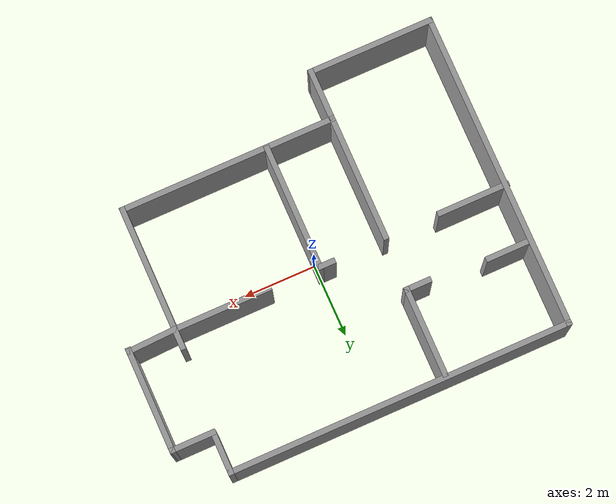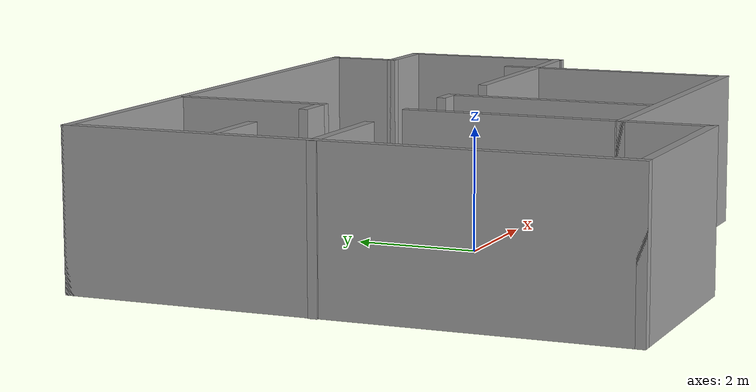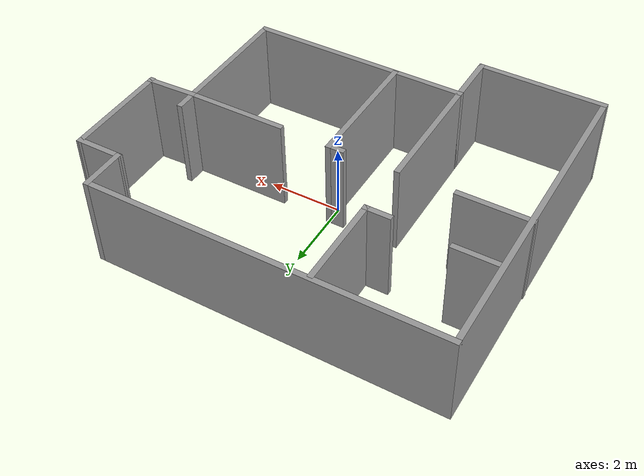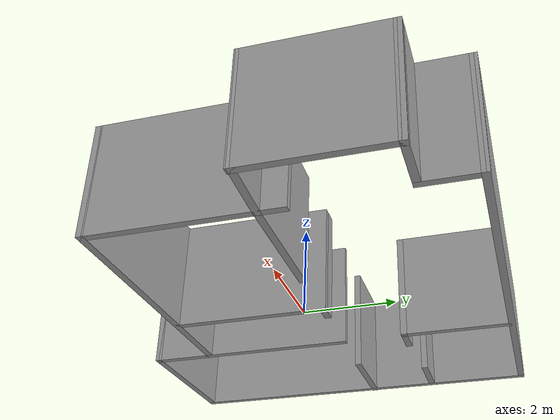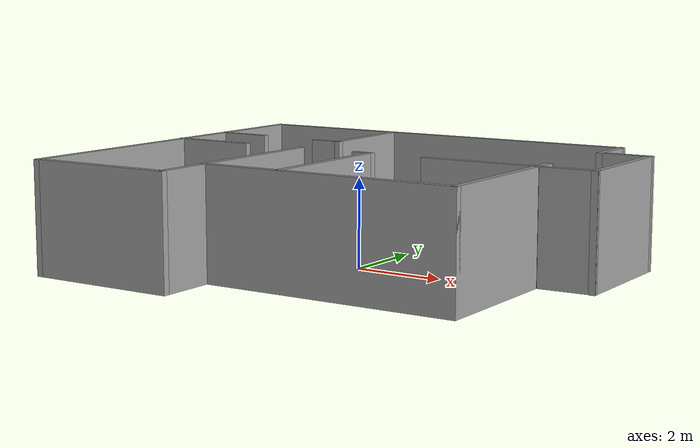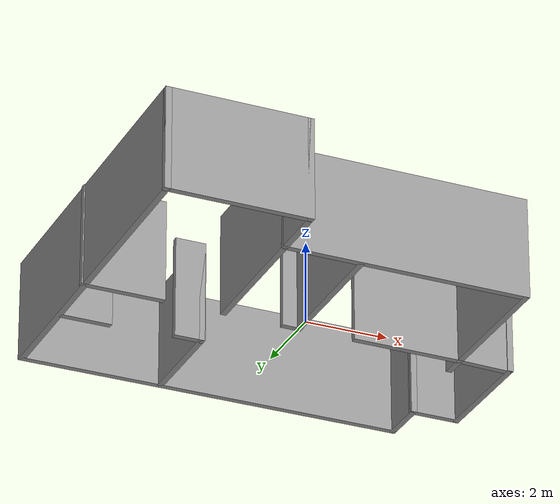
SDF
<?xml version='1.0'?>
<sdf version='1.6'>
  <model name='5800test'>
    <pose frame=''>0.042871 -0.019411 0 0 -0 1.5707</pose>
    <link name='Wall_0'>
      <collision name='Wall_0_Collision'>
        <geometry>
          <box>
            <size>3.5 0.15 2.5</size>
          </box>
        </geometry>
        <pose frame=''>0 0 1.25 0 -0 0</pose>
      </collision>
      <visual name='Wall_0_Visual'>
        <pose frame=''>0 0 1.25 0 -0 0</pose>
        <geometry>
          <box>
            <size>3.5 0.15 2.5</size>
          </box>
        </geometry>
        <material>
          <script>
            <uri>file://media/materials/scripts/gazebo.material</uri>
            <name>Gazebo/Grey</name>
          </script>
          <ambient>1 1 1 1</ambient>
        </material>
        <meta>
          <layer>0</layer>
        </meta>
      </visual>
      <pose frame=''>-4.30005 3.55121 0 0 -0 -1.5708</pose>
    </link>
    <link name='Wall_1'>
      <collision name='Wall_1_Collision'>
        <geometry>
          <box>
            <size>1.5 0.15 2.5</size>
          </box>
        </geometry>
        <pose frame=''>0 0 1.25 0 -0 0</pose>
      </collision>
      <visual name='Wall_1_Visual'>
        <pose frame=''>0 0 1.25 0 -0 0</pose>
        <geometry>
          <box>
            <size>1.5 0.15 2.5</size>
          </box>
        </geometry>
        <material>
          <script>
            <uri>file://media/materials/scripts/gazebo.material</uri>
            <name>Gazebo/Grey</name>
          </script>
          <ambient>1 1 1 1</ambient>
        </material>
        <meta>
          <layer>0</layer>
        </meta>
      </visual>
      <pose frame=''>-3.62505 1.87621 0 0 -0 0</pose>
    </link>
    <link name='Wall_11'>
      <collision name='Wall_11_Collision'>
        <geometry>
          <box>
            <size>0.5 0.15 2.5</size>
          </box>
        </geometry>
        <pose frame=''>0 0 1.25 0 -0 0</pose>
      </collision>
      <visual name='Wall_11_Visual'>
        <pose frame=''>0 0 1.25 0 -0 0</pose>
        <geometry>
          <box>
            <size>0.5 0.15 2.5</size>
          </box>
        </geometry>
        <material>
          <script>
            <uri>file://media/materials/scripts/gazebo.material</uri>
            <name>Gazebo/Grey</name>
          </script>
          <ambient>1 1 1 1</ambient>
        </material>
        <meta>
          <layer>0</layer>
        </meta>
      </visual>
      <pose frame=''>0.433158 0.21417 0 0 -0 1.5708</pose>
    </link>
    <link name='Wall_13'>
      <collision name='Wall_13_Collision'>
        <geometry>
          <box>
            <size>8.75 0.15 2.5</size>
          </box>
        </geometry>
        <pose frame=''>0 0 1.25 0 -0 0</pose>
      </collision>
      <visual name='Wall_13_Visual'>
        <pose frame=''>0 0 1.25 0 -0 0</pose>
        <geometry>
          <box>
            <size>8.75 0.15 2.5</size>
          </box>
        </geometry>
        <material>
          <script>
            <uri>file://media/materials/scripts/gazebo.material</uri>
            <name>Gazebo/Grey</name>
          </script>
          <ambient>1 1 1 1</ambient>
        </material>
        <meta>
          <layer>0</layer>
        </meta>
      </visual>
      <pose frame=''>-5.2e-05 5.22621 0 0 -0 0</pose>
    </link>
    <link name='Wall_14'>
      <collision name='Wall_14_Collision'>
        <geometry>
          <box>
            <size>9.5 0.15 2.5</size>
          </box>
        </geometry>
        <pose frame=''>0 0 1.25 0 -0 0</pose>
      </collision>
      <visual name='Wall_14_Visual'>
        <pose frame=''>0 0 1.25 0 -0 0</pose>
        <geometry>
          <box>
            <size>9.5 0.15 2.5</size>
          </box>
        </geometry>
        <material>
          <script>
            <uri>file://media/materials/scripts/gazebo.material</uri>
            <name>Gazebo/Grey</name>
          </script>
          <ambient>1 1 1 1</ambient>
        </material>
        <meta>
          <layer>0</layer>
        </meta>
      </visual>
      <pose frame=''>4.29995 0.551209 0 0 -0 -1.5708</pose>
    </link>
    <link name='Wall_15'>
      <collision name='Wall_15_Collision'>
        <geometry>
          <box>
            <size>1.25 0.15 2.5</size>
          </box>
        </geometry>
        <pose frame=''>0 0 1.25 0 -0 0</pose>
      </collision>
      <visual name='Wall_15_Visual'>
        <pose frame=''>0 0 1.25 0 -0 0</pose>
        <geometry>
          <box>
            <size>1.25 0.15 2.5</size>
          </box>
        </geometry>
        <material>
          <script>
            <uri>file://media/materials/scripts/gazebo.material</uri>
            <name>Gazebo/Grey</name>
          </script>
          <ambient>1 1 1 1</ambient>
        </material>
        <meta>
          <layer>0</layer>
        </meta>
      </visual>
      <pose frame=''>3.75004 -4.12369 0 0 -0 3.14141</pose>
    </link>
    <link name='Wall_16'>
      <collision name='Wall_16_Collision'>
        <geometry>
          <box>
            <size>1.277 0.15 2.5</size>
          </box>
        </geometry>
        <pose frame=''>0 0 1.25 0 -0 0</pose>
      </collision>
      <visual name='Wall_16_Visual'>
        <pose frame=''>0 0 1.25 0 -0 0</pose>
        <geometry>
          <box>
            <size>1.277 0.15 2.5</size>
          </box>
        </geometry>
        <material>
          <script>
            <uri>file://media/materials/scripts/gazebo.material</uri>
            <name>Gazebo/Grey</name>
          </script>
          <ambient>1 1 1 1</ambient>
        </material>
        <meta>
          <layer>0</layer>
        </meta>
      </visual>
      <pose frame=''>3.20013 -4.68709 0 0 -0 -1.5708</pose>
    </link>
    <link name='Wall_17'>
      <collision name='Wall_17_Collision'>
        <geometry>
          <box>
            <size>2.92038 0.15 2.5</size>
          </box>
        </geometry>
        <pose frame=''>0 0 1.25 0 -0 0</pose>
      </collision>
      <visual name='Wall_17_Visual'>
        <pose frame=''>0 0 1.25 0 -0 0</pose>
        <geometry>
          <box>
            <size>2.92038 0.15 2.5</size>
          </box>
        </geometry>
        <material>
          <script>
            <uri>file://media/materials/scripts/gazebo.material</uri>
            <name>Gazebo/Grey</name>
          </script>
          <ambient>1 1 1 1</ambient>
        </material>
        <meta>
          <layer>0</layer>
        </meta>
      </visual>
      <pose frame=''>1.81494 -5.25049 0 0 -0 3.14152</pose>
    </link>
    <link name='Wall_18'>
      <collision name='Wall_18_Collision'>
        <geometry>
          <box>
            <size>1.42311 0.15 2.5</size>
          </box>
        </geometry>
        <pose frame=''>0 0 1.25 0 -0 0</pose>
      </collision>
      <visual name='Wall_18_Visual'>
        <pose frame=''>0 0 1.25 0 -0 0</pose>
        <geometry>
          <box>
            <size>1.42311 0.15 2.5</size>
          </box>
        </geometry>
        <material>
          <script>
            <uri>file://media/materials/scripts/gazebo.material</uri>
            <name>Gazebo/Grey</name>
          </script>
          <ambient>1 1 1 1</ambient>
        </material>
        <meta>
          <layer>0</layer>
        </meta>
      </visual>
      <pose frame=''>0.432266 -4.61393 0 0 -0 1.60862</pose>
    </link>
    <link name='Wall_2'>
      <collision name='Wall_2_Collision'>
        <geometry>
          <box>
            <size>6 0.15 2.5</size>
          </box>
        </geometry>
        <pose frame=''>0 0 1.25 0 -0 0</pose>
      </collision>
      <visual name='Wall_2_Visual'>
        <pose frame=''>0 0 1.25 0 -0 0</pose>
        <geometry>
          <box>
            <size>6 0.15 2.5</size>
          </box>
        </geometry>
        <material>
          <script>
            <uri>file://media/materials/scripts/gazebo.material</uri>
            <name>Gazebo/Grey</name>
          </script>
          <ambient>1 1 1 1</ambient>
        </material>
        <meta>
          <layer>0</layer>
        </meta>
      </visual>
      <pose frame=''>-2.95005 -1.04879 0 0 -0 -1.5708</pose>
    </link>
    <link name='Wall_20'>
      <collision name='Wall_20_Collision'>
        <geometry>
          <box>
            <size>2 0.15 2.5</size>
          </box>
        </geometry>
        <pose frame=''>0 0 1.25 0 -0 0</pose>
      </collision>
      <visual name='Wall_20_Visual'>
        <pose frame=''>0 0 1.25 0 -0 0</pose>
        <geometry>
          <box>
            <size>2 0.15 2.5</size>
          </box>
        </geometry>
        <material>
          <script>
            <uri>file://media/materials/scripts/gazebo.material</uri>
            <name>Gazebo/Grey</name>
          </script>
          <ambient>1 1 1 1</ambient>
        </material>
        <meta>
          <layer>0</layer>
        </meta>
      </visual>
      <pose frame=''>0.408183 4.32781 0 0 -0 -1.5708</pose>
    </link>
    <link name='Wall_22'>
      <collision name='Wall_22_Collision'>
        <geometry>
          <box>
            <size>1.25 0.15 2.5</size>
          </box>
        </geometry>
        <pose frame=''>0 0 1.25 0 -0 0</pose>
      </collision>
      <visual name='Wall_22_Visual'>
        <pose frame=''>0 0 1.25 0 -0 0</pose>
        <geometry>
          <box>
            <size>1.25 0.15 2.5</size>
          </box>
        </geometry>
        <material>
          <script>
            <uri>file://media/materials/scripts/gazebo.material</uri>
            <name>Gazebo/Grey</name>
          </script>
          <ambient>1 1 1 1</ambient>
        </material>
        <meta>
          <layer>0</layer>
        </meta>
      </visual>
      <pose frame=''>1.97759 4.59641 0 0 -0 -1.5708</pose>
    </link>
    <link name='Wall_24'>
      <collision name='Wall_24_Collision'>
        <geometry>
          <box>
            <size>2.5 0.15 2.5</size>
          </box>
        </geometry>
        <pose frame=''>0 0 1.25 0 -0 0</pose>
      </collision>
      <visual name='Wall_24_Visual'>
        <pose frame=''>0 0 1.25 0 -0 0</pose>
        <geometry>
          <box>
            <size>2.5 0.15 2.5</size>
          </box>
        </geometry>
        <material>
          <script>
            <uri>file://media/materials/scripts/gazebo.material</uri>
            <name>Gazebo/Grey</name>
          </script>
          <ambient>1 1 1 1</ambient>
        </material>
        <meta>
          <layer>0</layer>
        </meta>
      </visual>
      <pose frame=''>3.03701 1.82138 0 0 -0 3.14159</pose>
    </link>
    <link name='Wall_25'>
      <collision name='Wall_25_Collision'>
        <geometry>
          <box>
            <size>0.75 0.15 2.5</size>
          </box>
        </geometry>
        <pose frame=''>0 0 1.25 0 -0 0</pose>
      </collision>
      <visual name='Wall_25_Visual'>
        <pose frame=''>0 0 1.25 0 -0 0</pose>
        <geometry>
          <box>
            <size>0.75 0.15 2.5</size>
          </box>
        </geometry>
        <material>
          <script>
            <uri>file://media/materials/scripts/gazebo.material</uri>
            <name>Gazebo/Grey</name>
          </script>
          <ambient>1 1 1 1</ambient>
        </material>
        <meta>
          <layer>0</layer>
        </meta>
      </visual>
      <pose frame=''>1.86201 2.12138 0 0 -0 1.5708</pose>
    </link>
    <link name='Wall_3'>
      <collision name='Wall_3_Collision'>
        <geometry>
          <box>
            <size>4 0.15 2.5</size>
          </box>
        </geometry>
        <pose frame=''>0 0 1.25 0 -0 0</pose>
      </collision>
      <visual name='Wall_3_Visual'>
        <pose frame=''>0 0 1.25 0 -0 0</pose>
        <geometry>
          <box>
            <size>4 0.15 2.5</size>
          </box>
        </geometry>
        <material>
          <script>
            <uri>file://media/materials/scripts/gazebo.material</uri>
            <name>Gazebo/Grey</name>
          </script>
          <ambient>1 1 1 1</ambient>
        </material>
        <meta>
          <layer>0</layer>
        </meta>
      </visual>
      <pose frame=''>-1.02505 -3.97379 0 0 -0 0</pose>
    </link>
    <link name='Wall_5'>
      <collision name='Wall_5_Collision'>
        <geometry>
          <box>
            <size>2.75 0.15 2.5</size>
          </box>
        </geometry>
        <pose frame=''>0 0 1.25 0 -0 0</pose>
      </collision>
      <visual name='Wall_5_Visual'>
        <pose frame=''>0 0 1.25 0 -0 0</pose>
        <geometry>
          <box>
            <size>2.75 0.15 2.5</size>
          </box>
        </geometry>
        <material>
          <script>
            <uri>file://media/materials/scripts/gazebo.material</uri>
            <name>Gazebo/Grey</name>
          </script>
          <ambient>1 1 1 1</ambient>
        </material>
        <meta>
          <layer>0</layer>
        </meta>
      </visual>
      <pose frame=''>0.408183 -2.67746 0 0 -0 1.5708</pose>
    </link>
    <link name='Wall_7'>
      <collision name='Wall_7_Collision'>
        <geometry>
          <box>
            <size>3.5 0.15 2.5</size>
          </box>
        </geometry>
        <pose frame=''>0 0 1.25 0 -0 0</pose>
      </collision>
      <visual name='Wall_7_Visual'>
        <pose frame=''>0 0 1.25 0 -0 0</pose>
        <geometry>
          <box>
            <size>3.5 0.15 2.5</size>
          </box>
        </geometry>
        <material>
          <script>
            <uri>file://media/materials/scripts/gazebo.material</uri>
            <name>Gazebo/Grey</name>
          </script>
          <ambient>1 1 1 1</ambient>
        </material>
        <meta>
          <layer>0</layer>
        </meta>
      </visual>
      <pose frame=''>-1.24184 0.03917 0 0 -0 0</pose>
    </link>
    <link name='Wall_9'>
      <collision name='Wall_9_Collision'>
        <geometry>
          <box>
            <size>3.5 0.15 2.5</size>
          </box>
        </geometry>
        <pose frame=''>0 0 1.25 0 -0 0</pose>
      </collision>
      <visual name='Wall_9_Visual'>
        <pose frame=''>0 0 1.25 0 -0 0</pose>
        <geometry>
          <box>
            <size>3.5 0.15 2.5</size>
          </box>
        </geometry>
        <material>
          <script>
            <uri>file://media/materials/scripts/gazebo.material</uri>
            <name>Gazebo/Grey</name>
          </script>
          <ambient>1 1 1 1</ambient>
        </material>
        <meta>
          <layer>0</layer>
        </meta>
      </visual>
      <pose frame=''>-1.27505 1.87621 0 0 -0 0</pose>
    </link>
    <static>1</static>
  </model>
</sdf>
